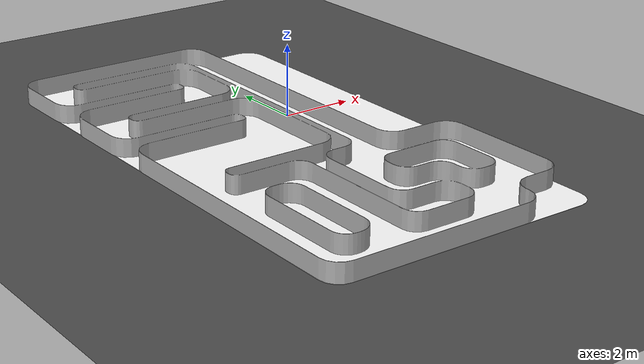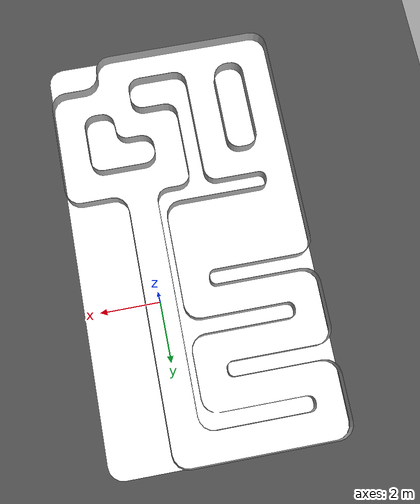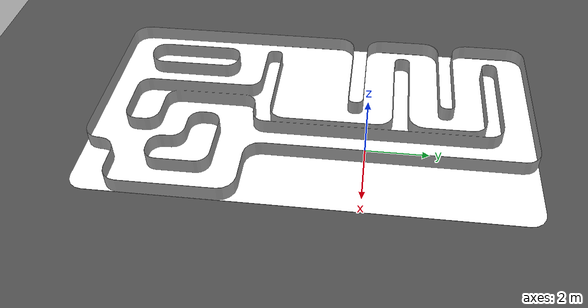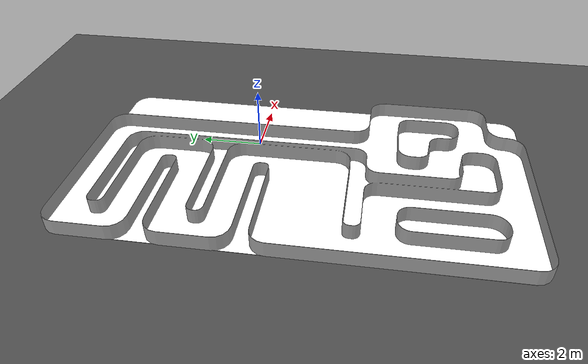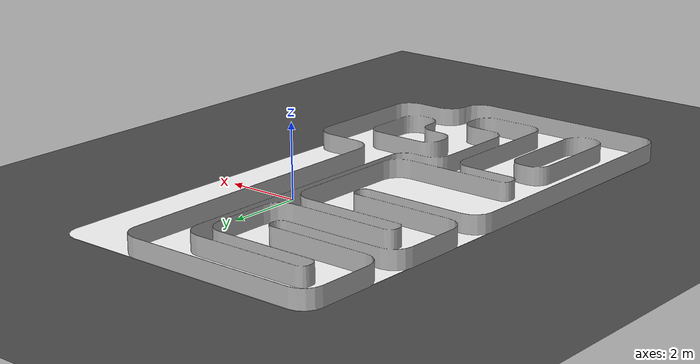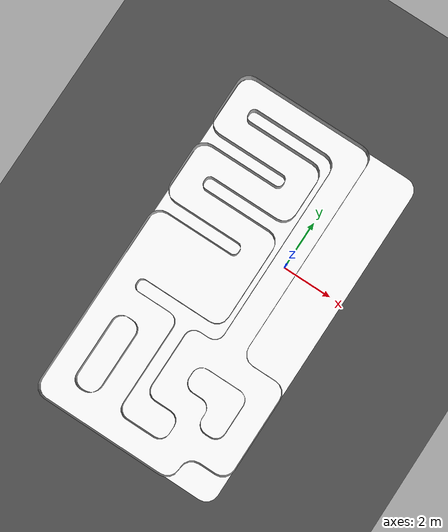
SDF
<sdf version='1.6'>
  <world name='default'>
      <!-- gz-sim 系统插件（物理/传感器/IMU/场景广播/用户命令） -->
  <plugin filename="libignition-gazebo-physics-system.so" name="ignition::gazebo::systems::Physics"/>
  <plugin filename="libignition-gazebo-user-commands-system.so" name="ignition::gazebo::systems::UserCommands"/>
  <plugin filename="libignition-gazebo-scene-broadcaster-system.so" name="ignition::gazebo::systems::SceneBroadcaster"/>
  <plugin filename="libignition-gazebo-sensors-system.so" name="ignition::gazebo::systems::Sensors"/>
  <plugin filename="libignition-gazebo-imu-system.so" name="ignition::gazebo::systems::Imu"/>

<light name='sun' type='directional'>
      <cast_shadows>1</cast_shadows>
      <pose frame=''>0 0 10 0 -0 0</pose>
      <diffuse>1.0 1.0 1.0</diffuse>
      <specular>0.2 0.2 0.2 1</specular>
      <attenuation>
        <range>1000</range>
        <constant>0.9</constant>
        <linear>0.01</linear>
        <quadratic>0.001</quadratic>
      </attenuation>
      <direction>-0.5 0.1 -0.9</direction>
          </light>
    <model name='ground_plane'>
      <static>1</static>
      <link name='link'>
        <collision name='collision'>
          <geometry>
            <plane>
              <normal>0 0 1</normal>
              <size>100 100</size>
            </plane>
          </geometry>
          <surface>
            <friction>
              <ode>
                <mu>100</mu>
                <mu2>50</mu2>
              </ode>
              <torsional>
                <ode/>
              </torsional>
            </friction>
            <contact>
              <ode/>
            </contact>
            <bounce/>
          </surface>
          <max_contacts>10</max_contacts>
        </collision>
        <visual name='visual'>
          <cast_shadows>0</cast_shadows>
          <geometry>
            <plane>
              <normal>0 0 1</normal>
              <size>100 100</size>
            </plane>
          </geometry>
          <material>
            <ambient>0.3 0.3 0.3 1</ambient>
            <diffuse>0.3 0.3 0.3 1</diffuse>
            <specular>0.02 0.02 0.02 1</specular>
          </material>
        </visual>
        <self_collide>0</self_collide>
        <enable_wind>0</enable_wind>
        <kinematic>0</kinematic>
      </link>
    </model>
    <gravity>0 0 -9.8</gravity>
    <magnetic_field>6e-06 2.3e-05 -4.2e-05</magnetic_field>
    <atmosphere type='adiabatic'/>
    <physics name='default_physics' default='0' type='ode'>
      <max_step_size>0.001</max_step_size>
      <real_time_factor>1</real_time_factor>
      <real_time_update_rate>1000</real_time_update_rate>
    </physics>
    <scene>
      <ambient>0.35 0.35 0.35 1</ambient>
      <background>0.3 0.3 0.3 1</background>
      <shadows>1</shadows>
    </scene>
    <audio>
      <device>default</device>
    </audio>
    <wind/>
    <spherical_coordinates>
      <surface_model>EARTH_WGS84</surface_model>
      <latitude_deg>0</latitude_deg>
      <longitude_deg>0</longitude_deg>
      <elevation>0</elevation>
      <heading_deg>0</heading_deg>
    </spherical_coordinates>
    <model name='tianracer_racetrack'>
      <link name='base_link'>
        <inertial>
          <mass>1665.21</mass>
          <inertia>
            <ixx>7770.35</ixx>
            <ixy>-6.70196</ixy>
            <ixz>-666.722</ixz>
            <iyy>29580.2</iyy>
            <iyz>56.5793</iyz>
            <izz>32653</izz>
          </inertia>
          <pose>0 0 0 0 -0 0</pose>
        </inertial>
        <pose>-1.41291 -1.9216 0 0 -0 1.56844</pose>
        <visual name='visual'>
          <pose>0 0 0 0 -0 0</pose>
          <geometry>
            <mesh>
              <uri>tianracer_racetrack/meshes/base_link.dae</uri>
              <scale>1 1 1</scale>
            </mesh>
          </geometry>
          <transparency>0</transparency>
          <cast_shadows>1</cast_shadows>
          <material>
            <diffuse>1.0 1.0 1.0</diffuse>
            <specular>0.1 0.1 0.1 1.0</specular>
            <pbr>
              <metal>
                <albedo_map>tianracer_racetrack/meshes/aa3.png</albedo_map>
                <metalness>0.0</metalness>
                <roughness>1.0</roughness>
              </metal>
            </pbr>
          </material>
        </visual>
        <collision name='collision'>
          <laser_retro>0</laser_retro>
          <max_contacts>10</max_contacts>
          <pose>0 0 0 0 -0 0</pose>
          <geometry>
            <mesh>
              <uri>tianracer_racetrack/meshes/base_link.dae</uri>
              <scale>1 1 1</scale>
            </mesh>
          </geometry>
          <surface>
            <friction>
              <ode>
              </ode>
              <torsional>
              </torsional>
            </friction>
            <contact>
              <ode>
              </ode>
            </contact>
          </surface>
        </collision>
      </link>
      <link name='wall_link'>
        <inertial>
          <mass>1665.21</mass>
          <inertia>
            <ixx>7770.35</ixx>
            <ixy>-6.70196</ixy>
            <ixz>-666.722</ixz>
            <iyy>29580.2</iyy>
            <iyz>56.5793</iyz>
            <izz>32653</izz>
          </inertia>
          <pose>0 0 0 0 -0 0</pose>
        </inertial>
        <pose>-1.43091 -1.91728 -0 0 -0 1.57141</pose>
        <visual name='visual'>
          <pose>0 0 0 0 -0 0</pose>
          <geometry>
            <mesh>
              <uri>tianracer_racetrack/meshes/wall.STL</uri>
              <scale>1 1 1</scale>
            </mesh>
          </geometry>
          <material>
            <ambient>0.7 0.7 0.7 1</ambient>
            <diffuse>0.7 0.7 0.7 1</diffuse>
            <specular>0.05 0.05 0.05 1</specular>
          </material>
        </visual>
        <collision name='collision'>
          <laser_retro>0</laser_retro>
          <max_contacts>10</max_contacts>
          <pose>0 0 0 0 -0 0</pose>
          <geometry>
            <mesh>
              <uri>tianracer_racetrack/meshes/wall.STL</uri>
              <scale>1 1 1</scale>
            </mesh>
          </geometry>
        </collision>
        <self_collide>0</self_collide>
        <enable_wind>0</enable_wind>
        <kinematic>0</kinematic>
      </link>
      <static>1</static>
      <allow_auto_disable>1</allow_auto_disable>
      <pose>0.071364 0.211162 0 0 -0 0</pose>
    </model>
    <gui fullscreen='0'>
      <camera name='user_camera'>
        <pose>-0.072273 -2.61921 6.73885 -0 1.1578 1.55619</pose>
        <view_controller>orbit</view_controller>
        <projection_type>perspective</projection_type>
      </camera>
    </gui>
  </world>
</sdf>
